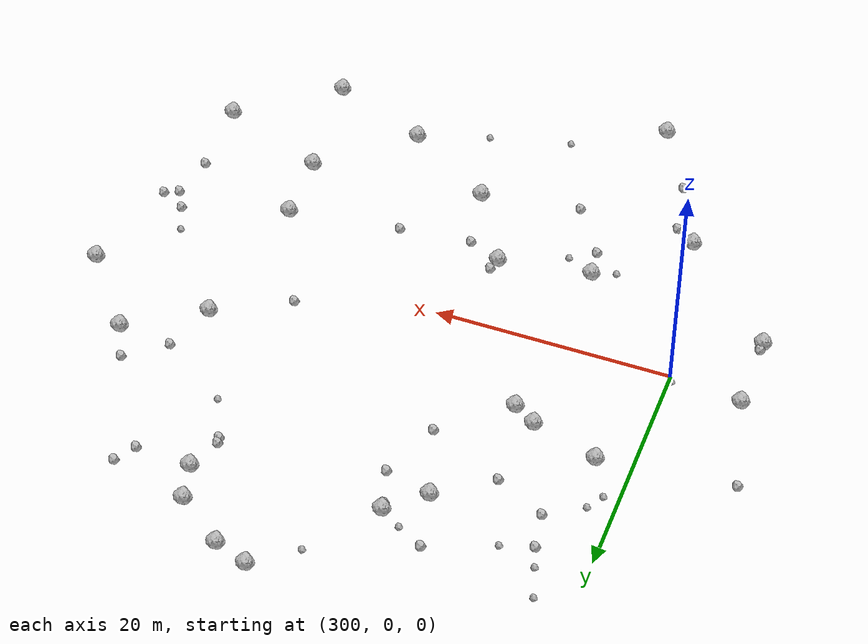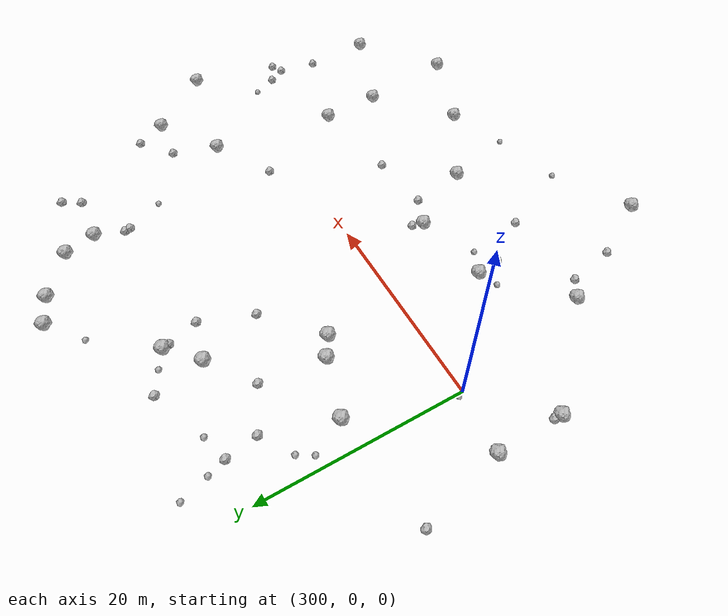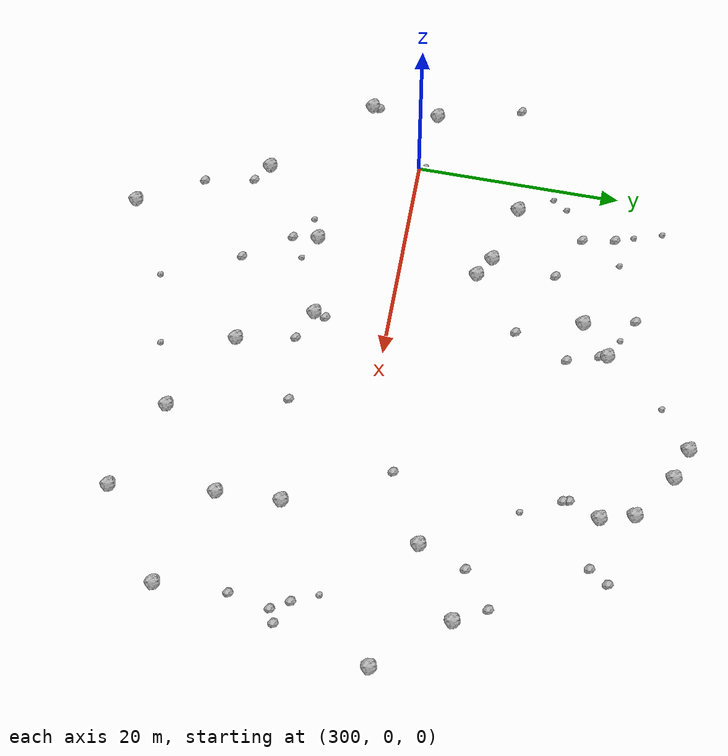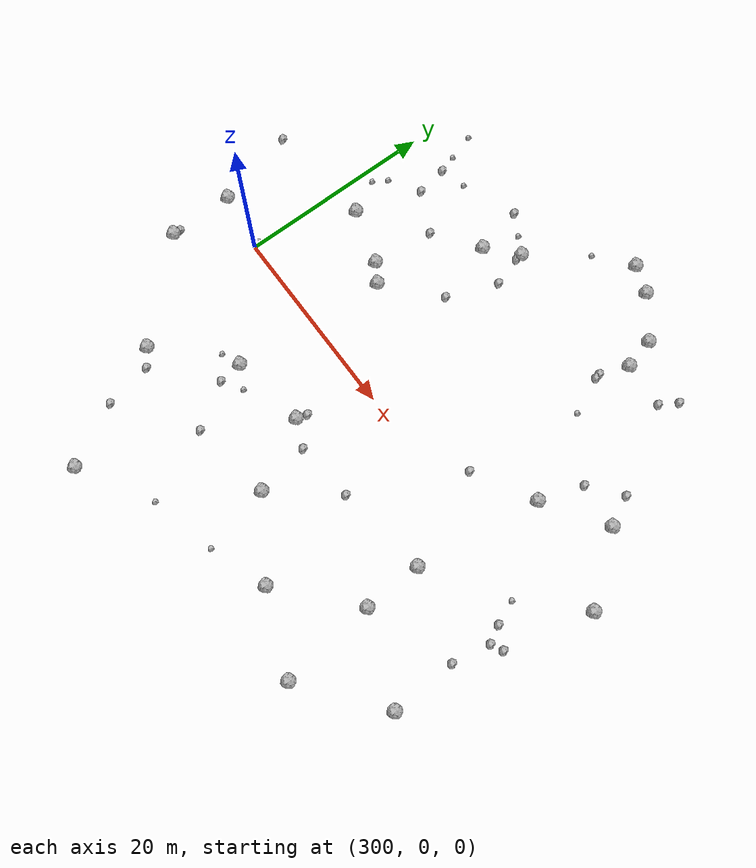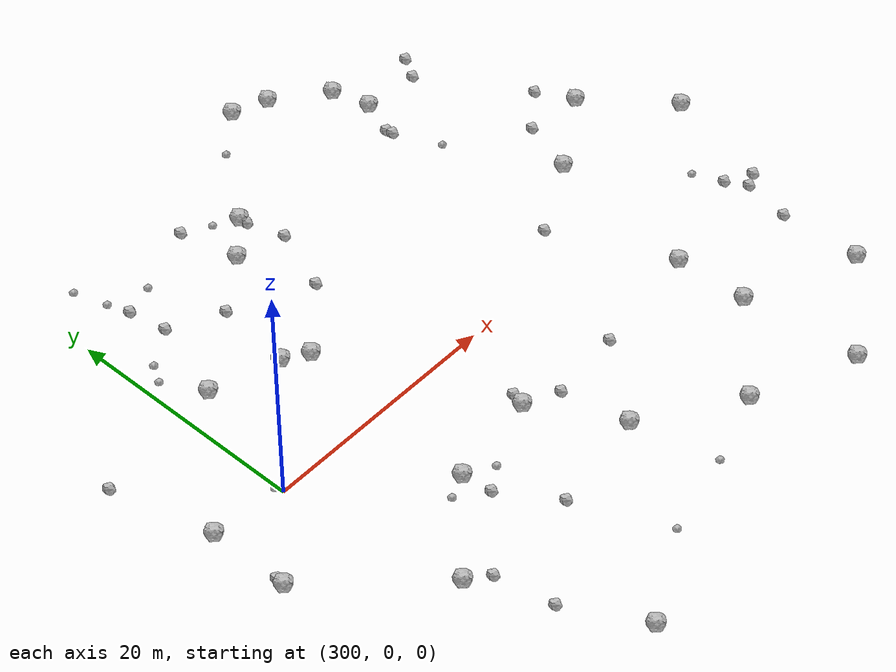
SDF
<sdf version="1.6">
 <world name="default">
  <include><uri>model://sun</uri></include>
  <model name="rock1_8_3">
   <include><uri>model://rock1</uri><pose>308.6479258807551 8.671681798368546 0.5 0 0 0</pose></include>
  </model>
  <model name="rock1_8_4">
   <include><uri>model://rock1</uri><pose>313.80082737923266 18.247738198220084 0.5 0 0 0</pose></include>
  </model>
  <model name="rock1_8_5">
   <include><uri>model://rock1</uri><pose>309.45677649336585 -8.414482945303263 0.5 0 0 0</pose></include>
  </model>
  <model name="rock1_8_6">
   <include><uri>model://rock1</uri><pose>294.03273768198636 -5.859138040426316 0.5 0 0 0</pose></include>
  </model>
  <model name="rock1_8_7">
   <include><uri>model://rock1</uri><pose>321.13107780395666 -13.961216172149015 0.5 0 0 0</pose></include>
  </model>
  <model name="rock1_8_8">
   <include><uri>model://rock1</uri><pose>348.694906599017 4.127416808750638 0.5 0 0 0</pose></include>
  </model>
  <model name="rock1_8_9">
   <include><uri>model://rock1</uri><pose>327.3277113963851 28.302839245988693 0.5 0 0 0</pose></include>
  </model>
  <model name="rock1_8_10">
   <include><uri>model://rock1</uri><pose>335.9647396793707 -12.441395283904132 0.5 0 0 0</pose></include>
  </model>
  <model name="rock1_8_11">
   <include><uri>model://rock1</uri><pose>343.5606106353392 10.573718191220038 0.5 0 0 0</pose></include>
  </model>
  <model name="rock1_8_12">
   <include><uri>model://rock1</uri><pose>310.5839004760796 7.453256425687634 0.5 0 0 0</pose></include>
  </model>
  <model name="rock1_8_13">
   <include><uri>model://rock1</uri><pose>344.96092127745084 -15.99801073957989 0.5 0 0 0</pose></include>
  </model>
  <model name="rock1_8_14">
   <include><uri>model://rock1</uri><pose>302.57455288213265 -14.696503726083499 0.5 0 0 0</pose></include>
  </model>
  <model name="rock1_8_15">
   <include><uri>model://rock1</uri><pose>293.9774471658325 0.8130046804006632 0.5 0 0 0</pose></include>
  </model>
  <model name="rock1_8_16">
   <include><uri>model://rock1</uri><pose>332.2227999441303 22.07438451628836 0.5 0 0 0</pose></include>
  </model>
  <model name="rock1_8_17">
   <include><uri>model://rock1</uri><pose>331.4069742309493 25.213753560084378 0.5 0 0 0</pose></include>
  </model>
  <model name="rock1_8_18">
   <include><uri>model://rock1</uri><pose>328.74469745947846 -18.832784677752706 0.5 0 0 0</pose></include>
  </model>
  <model name="rock1_8_19">
   <include><uri>model://rock1</uri><pose>316.71154604483837 20.898682290402405 0.5 0 0 0</pose></include>
  </model>
  <model name="rock1_8_20">
   <include><uri>model://rock1</uri><pose>337.43915521454016 6.496267144723419 0.5 0 0 0</pose></include>
  </model>
  <model name="rock1_8_21">
   <include><uri>model://rock1</uri><pose>324.44896305533615 29.36031127131018 0.5 0 0 0</pose></include>
  </model>
  <model name="rock1_8_22">
   <include><uri>model://rock1</uri><pose>337.0736433209984 -22.156798130911266 0.5 0 0 0</pose></include>
  </model>
  <model name="rock1_8_23">
   <include><uri>model://rock1</uri><pose>308.60539806810306 -26.937309182185817 0.5 0 0 0</pose></include>
  </model>
  <model name="rock1_8_24">
   <include><uri>model://rock1</uri><pose>302.9720637537945 10.396619072166324 0.5 0 0 0</pose></include>
  </model>
  <model name="rock1_8_25">
   <include><uri>model://rock1</uri><pose>335.6909109166129 -6.436308884651673 0.5 0 0 0</pose></include>
  </model>
  <model name="rock1_8_26">
   <include><uri>model://rock1</uri><pose>317.2300414445483 -7.182840418539982 0.5 0 0 0</pose></include>
  </model>
  <model name="rock2_8_0">
   <include><uri>model://rock2</uri><pose>312.64976502469784 -15.279896274631447 0.3 0 0 0</pose></include>
  </model>
  <model name="rock2_8_1">
   <include><uri>model://rock2</uri><pose>309.73516898946656 -10.84568024074958 0.3 0 0 0</pose></include>
  </model>
  <model name="rock2_8_2">
   <include><uri>model://rock2</uri><pose>338.8602450758249 11.019345969538563 0.3 0 0 0</pose></include>
  </model>
  <model name="rock2_8_3">
   <include><uri>model://rock2</uri><pose>342.0310545426411 13.559647204576024 0.3 0 0 0</pose></include>
  </model>
  <model name="rock2_8_4">
   <include><uri>model://rock2</uri><pose>305.0612238808011 17.095823974393923 0.3 0 0 0</pose></include>
  </model>
  <model name="rock2_8_5">
   <include><uri>model://rock2</uri><pose>294.06299334815725 -5.0997705930037505 0.3 0 0 0</pose></include>
  </model>
  <model name="rock2_8_6">
   <include><uri>model://rock2</uri><pose>331.0958976661693 19.224572384630733 0.3 0 0 0</pose></include>
  </model>
  <model name="rock2_8_7">
   <include><uri>model://rock2</uri><pose>315.76036946543377 12.062693391457628 0.3 0 0 0</pose></include>
  </model>
  <model name="rock2_8_8">
   <include><uri>model://rock2</uri><pose>305.2159015028511 -20.758600973355513 0.3 0 0 0</pose></include>
  </model>
  <model name="rock2_8_9">
   <include><uri>model://rock2</uri><pose>317.48885349744927 -6.042718895891923 0.3 0 0 0</pose></include>
  </model>
  <model name="rock2_8_10">
   <include><uri>model://rock2</uri><pose>331.20835213084496 18.691370172087268 0.3 0 0 0</pose></include>
  </model>
  <model name="rock2_8_11">
   <include><uri>model://rock2</uri><pose>304.26426351976147 -15.924103243778072 0.3 0 0 0</pose></include>
  </model>
  <model name="rock2_8_12">
   <include><uri>model://rock2</uri><pose>346.5153238528302 -4.768853372724685 0.3 0 0 0</pose></include>
  </model>
  <model name="rock2_8_13">
   <include><uri>model://rock2</uri><pose>337.97213502849996 23.597480511776297 0.3 0 0 0</pose></include>
  </model>
  <model name="rock2_8_14">
   <include><uri>model://rock2</uri><pose>344.3835917347974 -3.660201760293976 0.3 0 0 0</pose></include>
  </model>
  <model name="rock2_8_15">
   <include><uri>model://rock2</uri><pose>309.31407361302735 15.018483029196908 0.3 0 0 0</pose></include>
  </model>
  <model name="rock2_8_16">
   <include><uri>model://rock2</uri><pose>344.6370495381219 -9.250485697275227 0.3 0 0 0</pose></include>
  </model>
  <model name="rock2_8_17">
   <include><uri>model://rock2</uri><pose>326.1376069062245 -7.748549274435021 0.3 0 0 0</pose></include>
  </model>
  <model name="rock2_8_18">
   <include><uri>model://rock2</uri><pose>331.27380566345556 3.095129065376895 0.3 0 0 0</pose></include>
  </model>
  <model name="rock2_8_19">
   <include><uri>model://rock2</uri><pose>312.6599568253127 23.195230989732238 0.3 0 0 0</pose></include>
  </model>
  <model name="rock2_8_20">
   <include><uri>model://rock2</uri><pose>336.8915148989171 21.82780399176179 0.3 0 0 0</pose></include>
  </model>
  <model name="rock2_8_21">
   <include><uri>model://rock2</uri><pose>291.8256534238747 9.175560752041385 0.3 0 0 0</pose></include>
  </model>
  <model name="rock2_8_22">
   <include><uri>model://rock2</uri><pose>345.3313500409134 -5.343329197838134 0.3 0 0 0</pose></include>
  </model>
  <model name="rock2_8_23">
   <include><uri>model://rock2</uri><pose>320.0116250939019 -8.384524143461615 0.3 0 0 0</pose></include>
  </model>
  <model name="rock2_8_24">
   <include><uri>model://rock2</uri><pose>316.7639394405073 20.25000531885931 0.3 0 0 0</pose></include>
  </model>
  <model name="rock2_8_25">
   <include><uri>model://rock2</uri><pose>304.50837060513663 20.240166955669878 0.3 0 0 0</pose></include>
  </model>
  <model name="rock2_8_26">
   <include><uri>model://rock2</uri><pose>317.721255271768 17.222383500681467 0.3 0 0 0</pose></include>
  </model>
  <model name="rock3_8_0">
   <include><uri>model://rock3</uri><pose>302.0302596764269 15.135977340095849 0.2 0 0 0</pose></include>
  </model>
  <model name="rock3_8_1">
   <include><uri>model://rock3</uri><pose>307.464060433535 -9.203100795505641 0.2 0 0 0</pose></include>
  </model>
  <model name="rock3_8_2">
   <include><uri>model://rock3</uri><pose>343.38649566186285 -1.3333369854910835 0.2 0 0 0</pose></include>
  </model>
  <model name="rock3_8_3">
   <include><uri>model://rock3</uri><pose>307.10933002976043 20.972699338107233 0.2 0 0 0</pose></include>
  </model>
  <model name="rock3_8_4">
   <include><uri>model://rock3</uri><pose>303.9151188198313 21.992710439071402 0.2 0 0 0</pose></include>
  </model>
  <model name="rock3_8_5">
   <include><uri>model://rock3</uri><pose>303.06466042163146 24.702248637962818 0.2 0 0 0</pose></include>
  </model>
  <model name="rock3_8_6">
   <include><uri>model://rock3</uri><pose>332.9039905798699 14.964948538692262 0.2 0 0 0</pose></include>
  </model>
  <model name="rock3_8_7">
   <include><uri>model://rock3</uri><pose>301.1732671757733 13.719204256827354 0.2 0 0 0</pose></include>
  </model>
  <model name="rock3_8_8">
   <include><uri>model://rock3</uri><pose>322.75962967015033 -20.95533978127117 0.2 0 0 0</pose></include>
  </model>
  <model name="rock3_8_9">
   <include><uri>model://rock3</uri><pose>320.9270211140285 26.56480248947245 0.2 0 0 0</pose></include>
  </model>
  <model name="rock3_8_10">
   <include><uri>model://rock3</uri><pose>311.725697700505 -9.588605217483178 0.2 0 0 0</pose></include>
  </model>
  <model name="rock3_8_11">
   <include><uri>model://rock3</uri><pose>299.740888954416 0.5789185080625181 0.2 0 0 0</pose></include>
  </model>
  <model name="rock3_8_12">
   <include><uri>model://rock3</uri><pose>315.9196742426291 -22.685129798995558 0.2 0 0 0</pose></include>
  </model>
  <model name="rock3_8_13">
   <include><uri>model://rock3</uri><pose>314.84955311751554 21.954321158710933 0.2 0 0 0</pose></include>
  </model>
 </world>
</sdf>
